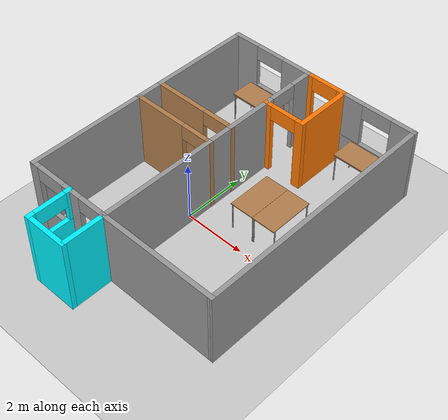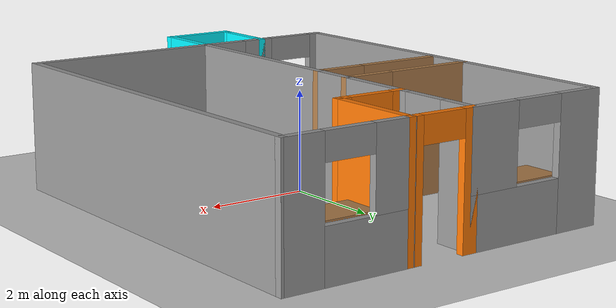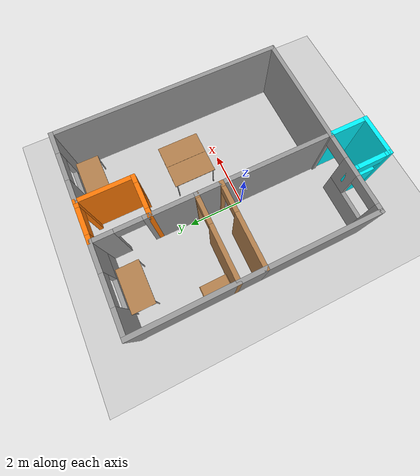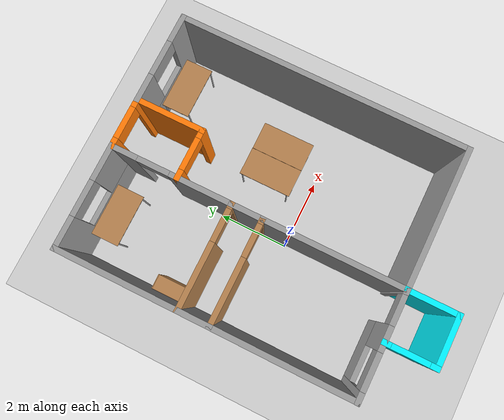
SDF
<sdf version="1.6">
 <world name="default">
  <model name="ground_plane">
   <static>1</static>
   <link name="link">
    <collision name="collision">
     <geometry><plane><normal>0 0 1</normal><size>100 100</size></plane></geometry>
     <surface><friction><ode><mu>100</mu><mu2>50</mu2></ode></friction></surface>
    </collision>
    <visual name="visual">
     <cast_shadows>0</cast_shadows>
     <geometry><plane><normal>0 0 1</normal><size>100 100</size></plane></geometry>
     <material>
      <script><uri>file://media/materials/scripts/gazebo.material</uri><name>Gazebo/Grey</name></script>
     </material>
    </visual>
   </link>
  </model>
  <model name="cozyapato">
   <pose>0.612099 0.24558 0 0 -0 0</pose>
   <link name="Wall_100">
    <collision name="Wall_100_Collision">
     <geometry><box><size>1.5 0.15 2.5</size></box></geometry>
     <pose>0 0 1.25 0 -0 0</pose>
    </collision>
    <visual name="Wall_100_Visual">
     <pose>0 0 1.25 0 -0 0</pose>
     <geometry><box><size>1.5 0.15 2.5</size></box></geometry>
     <material>
      <script><uri>file://media/materials/scripts/gazebo.material</uri><name>Gazebo/Grey</name></script>
      <ambient>0 0.952941 1 1</ambient>
     </material>
     <meta><layer>0</layer></meta>
    </visual>
    <pose>-0.499933 -4.02501 0 0 0 -1.5708</pose>
   </link>
   <link name="Wall_101">
    <collision name="Wall_101_Collision">
     <geometry><box><size>1.5 0.15 2.5</size></box></geometry>
     <pose>0 0 1.25 0 -0 0</pose>
    </collision>
    <visual name="Wall_101_Visual">
     <pose>0 0 1.25 0 -0 0</pose>
     <geometry><box><size>1.5 0.15 2.5</size></box></geometry>
     <material>
      <script><uri>file://media/materials/scripts/gazebo.material</uri><name>Gazebo/Grey</name></script>
      <ambient>0 0.952941 1 1</ambient>
     </material>
     <meta><layer>0</layer></meta>
    </visual>
    <pose>-1.17493 -4.70001 0 0 -0 3.14159</pose>
   </link>
   <link name="Wall_102">
    <pose>-1.84993 -4.02501 0 0 -0 1.5708</pose>
    <visual name="Wall_102_Visual_0">
     <pose>-0.623422 0 1.25 0 -0 0</pose>
     <geometry><box><size>0.253156 0.15 2.5</size></box></geometry>
     <material>
      <script><uri>file://media/materials/scripts/gazebo.material</uri><name>Gazebo/Grey</name></script>
      <ambient>0 0.952941 1 1</ambient>
     </material>
     <meta><layer>0</layer></meta>
    </visual>
    <collision name="Wall_102_Collision_0">
     <geometry><box><size>0.253156 0.15 2.5</size></box></geometry>
     <pose>-0.623422 0 1.25 0 -0 0</pose>
    </collision>
    <visual name="Wall_102_Visual_1">
     <pose>0.126578 0 0.75 0 -0 0</pose>
     <geometry><box><size>1.24684 0.15 1.5</size></box></geometry>
     <material>
      <script><uri>file://media/materials/scripts/gazebo.material</uri><name>Gazebo/Grey</name></script>
      <ambient>0 0.952941 1 1</ambient>
     </material>
     <meta><layer>0</layer></meta>
    </visual>
    <collision name="Wall_102_Collision_1">
     <geometry><box><size>1.24684 0.15 1.5</size></box></geometry>
     <pose>0.126578 0 0.75 0 -0 0</pose>
    </collision>
    <visual name="Wall_102_Visual_2">
     <pose>0.626578 0 2 0 -0 0</pose>
     <geometry><box><size>0.246844 0.15 1</size></box></geometry>
     <material>
      <script><uri>file://media/materials/scripts/gazebo.material</uri><name>Gazebo/Grey</name></script>
      <ambient>0 0.952941 1 1</ambient>
     </material>
     <meta><layer>0</layer></meta>
    </visual>
    <collision name="Wall_102_Collision_2">
     <geometry><box><size>0.246844 0.15 1</size></box></geometry>
     <pose>0.626578 0 2 0 -0 0</pose>
    </collision>
    <visual name="Wall_102_Visual_3">
     <pose>0.003156 0 2.25 0 -0 0</pose>
     <geometry><box><size>1 0.15 0.5</size></box></geometry>
     <material>
      <script><uri>file://media/materials/scripts/gazebo.material</uri><name>Gazebo/Grey</name></script>
      <ambient>0 0.952941 1 1</ambient>
     </material>
     <meta><layer>0</layer></meta>
    </visual>
    <collision name="Wall_102_Collision_3">
     <geometry><box><size>1 0.15 0.5</size></box></geometry>
     <pose>0.003156 0 2.25 0 -0 0</pose>
    </collision>
   </link>
   <link name="Wall_108">
    <pose>0.175067 4.7 0 0 -0 0</pose>
    <visual name="Wall_108_Visual_0">
     <pose>-0.599463 0 1.25 0 -0 0</pose>
     <geometry><box><size>0.301074 0.15 2.5</size></box></geometry>
     <material>
      <script><uri>file://media/materials/scripts/gazebo.material</uri><name>Gazebo/Grey</name></script>
      <ambient>0.996078 0.47451 0.0196078 1</ambient>
     </material>
     <meta><layer>0</layer></meta>
    </visual>
    <collision name="Wall_108_Collision_0">
     <geometry><box><size>0.301074 0.15 2.5</size></box></geometry>
     <pose>-0.599463 0 1.25 0 -0 0</pose>
    </collision>
    <visual name="Wall_108_Visual_1">
     <pose>0.600537 0 1.25 0 -0 0</pose>
     <geometry><box><size>0.298926 0.15 2.5</size></box></geometry>
     <material>
      <script><uri>file://media/materials/scripts/gazebo.material</uri><name>Gazebo/Grey</name></script>
      <ambient>0.996078 0.47451 0.0196078 1</ambient>
     </material>
     <meta><layer>0</layer></meta>
    </visual>
    <collision name="Wall_108_Collision_1">
     <geometry><box><size>0.298926 0.15 2.5</size></box></geometry>
     <pose>0.600537 0 1.25 0 -0 0</pose>
    </collision>
    <visual name="Wall_108_Visual_2">
     <pose>0.001074 0 2.25 0 -0 0</pose>
     <geometry><box><size>0.9 0.15 0.5</size></box></geometry>
     <material>
      <script><uri>file://media/materials/scripts/gazebo.material</uri><name>Gazebo/Grey</name></script>
      <ambient>0.996078 0.47451 0.0196078 1</ambient>
     </material>
     <meta><layer>0</layer></meta>
    </visual>
    <collision name="Wall_108_Collision_2">
     <geometry><box><size>0.9 0.15 0.5</size></box></geometry>
     <pose>0.001074 0 2.25 0 -0 0</pose>
    </collision>
   </link>
   <link name="Wall_109">
    <collision name="Wall_109_Collision">
     <geometry><box><size>2 0.15 2.5</size></box></geometry>
     <pose>0 0 1.25 0 -0 0</pose>
    </collision>
    <visual name="Wall_109_Visual">
     <pose>0 0 1.25 0 -0 0</pose>
     <geometry><box><size>2 0.15 2.5</size></box></geometry>
     <material>
      <script><uri>file://media/materials/scripts/gazebo.material</uri><name>Gazebo/Grey</name></script>
      <ambient>0.996078 0.47451 0.0196078 1</ambient>
     </material>
     <meta><layer>0</layer></meta>
    </visual>
    <pose>0.850067 3.77499 0 0 0 -1.5708</pose>
   </link>
   <link name="Wall_110">
    <pose>0.175067 2.84999 0 0 -0 3.14159</pose>
    <visual name="Wall_110_Visual_0">
     <pose>-0.600722 0 1.25 0 -0 0</pose>
     <geometry><box><size>0.298555 0.15 2.5</size></box></geometry>
     <material>
      <script><uri>file://media/materials/scripts/gazebo.material</uri><name>Gazebo/Grey</name></script>
      <ambient>0.996078 0.47451 0.0196078 1</ambient>
     </material>
     <meta><layer>0</layer></meta>
    </visual>
    <collision name="Wall_110_Collision_0">
     <geometry><box><size>0.298555 0.15 2.5</size></box></geometry>
     <pose>-0.600722 0 1.25 0 -0 0</pose>
    </collision>
    <visual name="Wall_110_Visual_1">
     <pose>0.599278 0 1.25 0 -0 0</pose>
     <geometry><box><size>0.301445 0.15 2.5</size></box></geometry>
     <material>
      <script><uri>file://media/materials/scripts/gazebo.material</uri><name>Gazebo/Grey</name></script>
      <ambient>0.996078 0.47451 0.0196078 1</ambient>
     </material>
     <meta><layer>0</layer></meta>
    </visual>
    <collision name="Wall_110_Collision_1">
     <geometry><box><size>0.301445 0.15 2.5</size></box></geometry>
     <pose>0.599278 0 1.25 0 -0 0</pose>
    </collision>
    <visual name="Wall_110_Visual_2">
     <pose>-0.001445 0 2.25 0 -0 0</pose>
     <geometry><box><size>0.9 0.15 0.5</size></box></geometry>
     <material>
      <script><uri>file://media/materials/scripts/gazebo.material</uri><name>Gazebo/Grey</name></script>
      <ambient>0.996078 0.47451 0.0196078 1</ambient>
     </material>
     <meta><layer>0</layer></meta>
    </visual>
    <collision name="Wall_110_Collision_2">
     <geometry><box><size>0.9 0.15 0.5</size></box></geometry>
     <pose>-0.001445 0 2.25 0 -0 0</pose>
    </collision>
   </link>
   <link name="Wall_112">
    <collision name="Wall_112_Collision">
     <geometry><box><size>3.99985 0.15 2.5</size></box></geometry>
     <pose>0 0 1.25 0 -0 0</pose>
    </collision>
    <visual name="Wall_112_Visual">
     <pose>0 0 1.25 0 -0 0</pose>
     <geometry><box><size>3.99985 0.15 2.5</size></box></geometry>
     <material>
      <script><uri>file://media/materials/scripts/gazebo.material</uri><name>Gazebo/Grey</name></script>
      <ambient>1 1 1 1</ambient>
     </material>
     <meta><layer>0</layer></meta>
    </visual>
    <pose>1.42499 -3.3502 0 0 0 -0.000101</pose>
   </link>
   <link name="Wall_113">
    <collision name="Wall_113_Collision">
     <geometry><box><size>8.2 0.15 2.5</size></box></geometry>
     <pose>0 0 1.25 0 -0 0</pose>
    </collision>
    <visual name="Wall_113_Visual">
     <pose>0 0 1.25 0 -0 0</pose>
     <geometry><box><size>8.2 0.15 2.5</size></box></geometry>
     <material>
      <script><uri>file://media/materials/scripts/gazebo.material</uri><name>Gazebo/Grey</name></script>
      <ambient>1 1 1 1</ambient>
     </material>
     <meta><layer>0</layer></meta>
    </visual>
    <pose>3.34992 0.674605 0 0 -0 1.5708</pose>
   </link>
   <link name="Wall_115">
    <pose>2.09999 4.6998 0 0 -0 3.14144</pose>
    <visual name="Wall_115_Visual_0">
     <pose>-0.912211 0 1.25 0 -0 0</pose>
     <geometry><box><size>0.825433 0.15 2.5</size></box></geometry>
     <material>
      <script><uri>file://media/materials/scripts/gazebo.material</uri><name>Gazebo/Grey</name></script>
      <ambient>1 1 1 1</ambient>
     </material>
     <meta><layer>0</layer></meta>
    </visual>
    <collision name="Wall_115_Collision_0">
     <geometry><box><size>0.825433 0.15 2.5</size></box></geometry>
     <pose>-0.912211 0 1.25 0 -0 0</pose>
    </collision>
    <visual name="Wall_115_Visual_1">
     <pose>0.412716 0 0.5 0 -0 0</pose>
     <geometry><box><size>1.82442 0.15 1</size></box></geometry>
     <material>
      <script><uri>file://media/materials/scripts/gazebo.material</uri><name>Gazebo/Grey</name></script>
      <ambient>1 1 1 1</ambient>
     </material>
     <meta><layer>0</layer></meta>
    </visual>
    <collision name="Wall_115_Collision_1">
     <geometry><box><size>1.82442 0.15 1</size></box></geometry>
     <pose>0.412716 0 0.5 0 -0 0</pose>
    </collision>
    <visual name="Wall_115_Visual_2">
     <pose>0.912716 0 1.75 0 -0 0</pose>
     <geometry><box><size>0.824421 0.15 1.5</size></box></geometry>
     <material>
      <script><uri>file://media/materials/scripts/gazebo.material</uri><name>Gazebo/Grey</name></script>
      <ambient>1 1 1 1</ambient>
     </material>
     <meta><layer>0</layer></meta>
    </visual>
    <collision name="Wall_115_Collision_2">
     <geometry><box><size>0.824421 0.15 1.5</size></box></geometry>
     <pose>0.912716 0 1.75 0 -0 0</pose>
    </collision>
    <visual name="Wall_115_Visual_3">
     <pose>0.000506 0 2.25 0 -0 0</pose>
     <geometry><box><size>1 0.15 0.5</size></box></geometry>
     <material>
      <script><uri>file://media/materials/scripts/gazebo.material</uri><name>Gazebo/Grey</name></script>
      <ambient>1 1 1 1</ambient>
     </material>
     <meta><layer>0</layer></meta>
    </visual>
    <collision name="Wall_115_Collision_3">
     <geometry><box><size>1 0.15 0.5</size></box></geometry>
     <pose>0.000506 0 2.25 0 -0 0</pose>
    </collision>
   </link>
   <link name="Wall_87">
    <pose>-1.92493 4.7 0 0 -0 0</pose>
    <visual name="Wall_87_Visual_0">
     <pose>-1.02631 0 1.25 0 -0 0</pose>
     <geometry><box><size>0.947379 0.15 2.5</size></box></geometry>
     <material>
      <script><uri>file://media/materials/scripts/gazebo.material</uri><name>Gazebo/Grey</name></script>
      <ambient>1 1 1 1</ambient>
     </material>
     <meta><layer>0</layer></meta>
    </visual>
    <collision name="Wall_87_Collision_0">
     <geometry><box><size>0.947379 0.15 2.5</size></box></geometry>
     <pose>-1.02631 0 1.25 0 -0 0</pose>
    </collision>
    <visual name="Wall_87_Visual_1">
     <pose>0.473689 0 0.5 0 -0 0</pose>
     <geometry><box><size>2.05262 0.15 1</size></box></geometry>
     <material>
      <script><uri>file://media/materials/scripts/gazebo.material</uri><name>Gazebo/Grey</name></script>
      <ambient>1 1 1 1</ambient>
     </material>
     <meta><layer>0</layer></meta>
    </visual>
    <collision name="Wall_87_Collision_1">
     <geometry><box><size>2.05262 0.15 1</size></box></geometry>
     <pose>0.473689 0 0.5 0 -0 0</pose>
    </collision>
    <visual name="Wall_87_Visual_2">
     <pose>0.973689 0 1.75 0 -0 0</pose>
     <geometry><box><size>1.05262 0.15 1.5</size></box></geometry>
     <material>
      <script><uri>file://media/materials/scripts/gazebo.material</uri><name>Gazebo/Grey</name></script>
      <ambient>1 1 1 1</ambient>
     </material>
     <meta><layer>0</layer></meta>
    </visual>
    <collision name="Wall_87_Collision_2">
     <geometry><box><size>1.05262 0.15 1.5</size></box></geometry>
     <pose>0.973689 0 1.75 0 -0 0</pose>
    </collision>
    <visual name="Wall_87_Visual_3">
     <pose>-0.052621 0 2.25 0 -0 0</pose>
     <geometry><box><size>1 0.15 0.5</size></box></geometry>
     <material>
      <script><uri>file://media/materials/scripts/gazebo.material</uri><name>Gazebo/Grey</name></script>
      <ambient>1 1 1 1</ambient>
     </material>
     <meta><layer>0</layer></meta>
    </visual>
    <collision name="Wall_87_Collision_3">
     <geometry><box><size>1 0.15 0.5</size></box></geometry>
     <pose>-0.052621 0 2.25 0 -0 0</pose>
    </collision>
   </link>
   <link name="Wall_88">
    <pose>-0.499933 3.02499 0 0 0 -1.5708</pose>
    <visual name="Wall_88_Visual_0">
     <pose>-1.35034 0 1.25 0 -0 0</pose>
     <geometry><box><size>0.799327 0.15 2.5</size></box></geometry>
     <material>
      <script><uri>file://media/materials/scripts/gazebo.material</uri><name>Gazebo/Grey</name></script>
      <ambient>1 1 1 1</ambient>
     </material>
     <meta><layer>0</layer></meta>
    </visual>
    <collision name="Wall_88_Collision_0">
     <geometry><box><size>0.799327 0.15 2.5</size></box></geometry>
     <pose>-1.35034 0 1.25 0 -0 0</pose>
    </collision>
    <visual name="Wall_88_Visual_1">
     <pose>0.849663 0 1.25 0 -0 0</pose>
     <geometry><box><size>1.80067 0.15 2.5</size></box></geometry>
     <material>
      <script><uri>file://media/materials/scripts/gazebo.material</uri><name>Gazebo/Grey</name></script>
      <ambient>1 1 1 1</ambient>
     </material>
     <meta><layer>0</layer></meta>
    </visual>
    <collision name="Wall_88_Collision_1">
     <geometry><box><size>1.80067 0.15 2.5</size></box></geometry>
     <pose>0.849663 0 1.25 0 -0 0</pose>
    </collision>
    <visual name="Wall_88_Visual_2">
     <pose>-0.500673 0 2.25 0 -0 0</pose>
     <geometry><box><size>0.9 0.15 0.5</size></box></geometry>
     <material>
      <script><uri>file://media/materials/scripts/gazebo.material</uri><name>Gazebo/Grey</name></script>
      <ambient>1 1 1 1</ambient>
     </material>
     <meta><layer>0</layer></meta>
    </visual>
    <collision name="Wall_88_Collision_2">
     <geometry><box><size>0.9 0.15 0.5</size></box></geometry>
     <pose>-0.500673 0 2.25 0 -0 0</pose>
    </collision>
   </link>
   <link name="Wall_89">
    <pose>-1.92493 1.34999 0 0 -0 3.14159</pose>
    <visual name="Wall_89_Visual_0">
     <pose>-1.4003 0 1.25 0 -0 0</pose>
     <geometry><box><size>0.199399 0.15 2.5</size></box></geometry>
     <material>
      <script><uri>file://media/materials/scripts/gazebo.material</uri><name>Gazebo/Wood</name></script>
      <ambient>1 1 1 1</ambient>
     </material>
     <meta><layer>0</layer></meta>
    </visual>
    <collision name="Wall_89_Collision_0">
     <geometry><box><size>0.199399 0.15 2.5</size></box></geometry>
     <pose>-1.4003 0 1.25 0 -0 0</pose>
    </collision>
    <visual name="Wall_89_Visual_1">
     <pose>0.549699 0 1.25 0 -0 0</pose>
     <geometry><box><size>1.9006 0.15 2.5</size></box></geometry>
     <material>
      <script><uri>file://media/materials/scripts/gazebo.material</uri><name>Gazebo/Wood</name></script>
      <ambient>1 1 1 1</ambient>
     </material>
     <meta><layer>0</layer></meta>
    </visual>
    <collision name="Wall_89_Collision_1">
     <geometry><box><size>1.9006 0.15 2.5</size></box></geometry>
     <pose>0.549699 0 1.25 0 -0 0</pose>
    </collision>
    <visual name="Wall_89_Visual_2">
     <pose>-0.850601 0 2.25 0 -0 0</pose>
     <geometry><box><size>0.9 0.15 0.5</size></box></geometry>
     <material>
      <script><uri>file://media/materials/scripts/gazebo.material</uri><name>Gazebo/Wood</name></script>
      <ambient>1 1 1 1</ambient>
     </material>
     <meta><layer>0</layer></meta>
    </visual>
    <collision name="Wall_89_Collision_2">
     <geometry><box><size>0.9 0.15 0.5</size></box></geometry>
     <pose>-0.850601 0 2.25 0 -0 0</pose>
    </collision>
   </link>
   <link name="Wall_90">
    <collision name="Wall_90_Collision">
     <geometry><box><size>3.5 0.15 2.5</size></box></geometry>
     <pose>0 0 1.25 0 -0 0</pose>
    </collision>
    <visual name="Wall_90_Visual">
     <pose>0 0 1.25 0 -0 0</pose>
     <geometry><box><size>3.5 0.15 2.5</size></box></geometry>
     <material>
      <script><uri>file://media/materials/scripts/gazebo.material</uri><name>Gazebo/Grey</name></script>
      <ambient>1 1 1 1</ambient>
     </material>
     <meta><layer>0</layer></meta>
    </visual>
    <pose>-3.34993 3.02499 0 0 -0 1.5708</pose>
   </link>
   <link name="Wall_92">
    <collision name="Wall_92_Collision">
     <geometry><box><size>1 0.15 2.5</size></box></geometry>
     <pose>0 0 1.25 0 -0 0</pose>
    </collision>
    <visual name="Wall_92_Visual">
     <pose>0 0 1.25 0 -0 0</pose>
     <geometry><box><size>1 0.15 2.5</size></box></geometry>
     <material>
      <script><uri>file://media/materials/scripts/gazebo.material</uri><name>Gazebo/Grey</name></script>
      <ambient>1 1 1 1</ambient>
     </material>
     <meta><layer>0</layer></meta>
    </visual>
    <pose>-3.34993 0.924994 0 0 0 -1.5708</pose>
   </link>
   <link name="Wall_93">
    <pose>-1.92493 0.499994 0 0 -0 0</pose>
    <visual name="Wall_93_Visual_0">
     <pose>-0.551343 0 1.25 0 -0 0</pose>
     <geometry><box><size>1.89731 0.15 2.5</size></box></geometry>
     <material>
      <script><uri>file://media/materials/scripts/gazebo.material</uri><name>Gazebo/Wood</name></script>
      <ambient>1 1 1 1</ambient>
     </material>
     <meta><layer>0</layer></meta>
    </visual>
    <collision name="Wall_93_Collision_0">
     <geometry><box><size>1.89731 0.15 2.5</size></box></geometry>
     <pose>-0.551343 0 1.25 0 -0 0</pose>
    </collision>
    <visual name="Wall_93_Visual_1">
     <pose>1.39866 0 1.25 0 -0 0</pose>
     <geometry><box><size>0.202686 0.15 2.5</size></box></geometry>
     <material>
      <script><uri>file://media/materials/scripts/gazebo.material</uri><name>Gazebo/Wood</name></script>
      <ambient>1 1 1 1</ambient>
     </material>
     <meta><layer>0</layer></meta>
    </visual>
    <collision name="Wall_93_Collision_1">
     <geometry><box><size>0.202686 0.15 2.5</size></box></geometry>
     <pose>1.39866 0 1.25 0 -0 0</pose>
    </collision>
    <visual name="Wall_93_Visual_2">
     <pose>0.847314 0 2.25 0 -0 0</pose>
     <geometry><box><size>0.9 0.15 0.5</size></box></geometry>
     <material>
      <script><uri>file://media/materials/scripts/gazebo.material</uri><name>Gazebo/Wood</name></script>
      <ambient>1 1 1 1</ambient>
     </material>
     <meta><layer>0</layer></meta>
    </visual>
    <collision name="Wall_93_Collision_2">
     <geometry><box><size>0.9 0.15 0.5</size></box></geometry>
     <pose>0.847314 0 2.25 0 -0 0</pose>
    </collision>
   </link>
   <link name="Wall_94">
    <collision name="Wall_94_Collision">
     <geometry><box><size>1 0.15 2.5</size></box></geometry>
     <pose>0 0 1.25 0 -0 0</pose>
    </collision>
    <visual name="Wall_94_Visual">
     <pose>0 0 1.25 0 -0 0</pose>
     <geometry><box><size>1 0.15 2.5</size></box></geometry>
     <material>
      <script><uri>file://media/materials/scripts/gazebo.material</uri><name>Gazebo/Grey</name></script>
      <ambient>1 1 1 1</ambient>
     </material>
     <meta><layer>0</layer></meta>
    </visual>
    <pose>-0.499933 0.924994 0 0 -0 1.5708</pose>
   </link>
   <link name="Wall_96">
    <collision name="Wall_96_Collision">
     <geometry><box><size>4 0.15 2.5</size></box></geometry>
     <pose>0 0 1.25 0 -0 0</pose>
    </collision>
    <visual name="Wall_96_Visual">
     <pose>0 0 1.25 0 -0 0</pose>
     <geometry><box><size>4 0.15 2.5</size></box></geometry>
     <material>
      <script><uri>file://media/materials/scripts/gazebo.material</uri><name>Gazebo/Grey</name></script>
      <ambient>1 1 1 1</ambient>
     </material>
     <meta><layer>0</layer></meta>
    </visual>
    <pose>-3.34993 -1.42501 0 0 0 -1.5708</pose>
   </link>
   <link name="Wall_97">
    <pose>-1.92493 -3.35001 0 0 -0 0</pose>
    <visual name="Wall_97_Visual_0">
     <pose>-1.33807 0 1.25 0 -0 0</pose>
     <geometry><box><size>0.323858 0.15 2.5</size></box></geometry>
     <material>
      <script><uri>file://media/materials/scripts/gazebo.material</uri><name>Gazebo/Grey</name></script>
      <ambient>1 1 1 1</ambient>
     </material>
     <meta><layer>0</layer></meta>
    </visual>
    <collision name="Wall_97_Collision_0">
     <geometry><box><size>0.323858 0.15 2.5</size></box></geometry>
     <pose>-1.33807 0 1.25 0 -0 0</pose>
    </collision>
    <visual name="Wall_97_Visual_1">
     <pose>1.40031 0 1.25 0 -0 0</pose>
     <geometry><box><size>0.199375 0.15 2.5</size></box></geometry>
     <material>
      <script><uri>file://media/materials/scripts/gazebo.material</uri><name>Gazebo/Grey</name></script>
      <ambient>1 1 1 1</ambient>
     </material>
     <meta><layer>0</layer></meta>
    </visual>
    <collision name="Wall_97_Collision_1">
     <geometry><box><size>0.199375 0.15 2.5</size></box></geometry>
     <pose>1.40031 0 1.25 0 -0 0</pose>
    </collision>
    <visual name="Wall_97_Visual_2">
     <pose>-0.337758 0 0.5 0 -0 0</pose>
     <geometry><box><size>1.67677 0.15 1</size></box></geometry>
     <material>
      <script><uri>file://media/materials/scripts/gazebo.material</uri><name>Gazebo/Grey</name></script>
      <ambient>1 1 1 1</ambient>
     </material>
     <meta><layer>0</layer></meta>
    </visual>
    <collision name="Wall_97_Collision_2">
     <geometry><box><size>1.67677 0.15 1</size></box></geometry>
     <pose>-0.337758 0 0.5 0 -0 0</pose>
    </collision>
    <visual name="Wall_97_Visual_3">
     <pose>0.162242 0 1.75 0 -0 0</pose>
     <geometry><box><size>0.676767 0.15 1.5</size></box></geometry>
     <material>
      <script><uri>file://media/materials/scripts/gazebo.material</uri><name>Gazebo/Grey</name></script>
      <ambient>1 1 1 1</ambient>
     </material>
     <meta><layer>0</layer></meta>
    </visual>
    <collision name="Wall_97_Collision_3">
     <geometry><box><size>0.676767 0.15 1.5</size></box></geometry>
     <pose>0.162242 0 1.75 0 -0 0</pose>
    </collision>
    <visual name="Wall_97_Visual_4">
     <pose>-0.676142 0 2.25 0 -0 0</pose>
     <geometry><box><size>1 0.15 0.5</size></box></geometry>
     <material>
      <script><uri>file://media/materials/scripts/gazebo.material</uri><name>Gazebo/Grey</name></script>
      <ambient>1 1 1 1</ambient>
     </material>
     <meta><layer>0</layer></meta>
    </visual>
    <collision name="Wall_97_Collision_4">
     <geometry><box><size>1 0.15 0.5</size></box></geometry>
     <pose>-0.676142 0 2.25 0 -0 0</pose>
    </collision>
    <visual name="Wall_97_Visual_5">
     <pose>0.900625 0 2.25 0 -0 0</pose>
     <geometry><box><size>0.8 0.15 0.5</size></box></geometry>
     <material>
      <script><uri>file://media/materials/scripts/gazebo.material</uri><name>Gazebo/Grey</name></script>
      <ambient>1 1 1 1</ambient>
     </material>
     <meta><layer>0</layer></meta>
    </visual>
    <collision name="Wall_97_Collision_5">
     <geometry><box><size>0.8 0.15 0.5</size></box></geometry>
     <pose>0.900625 0 2.25 0 -0 0</pose>
    </collision>
   </link>
   <link name="Wall_98">
    <collision name="Wall_98_Collision">
     <geometry><box><size>4 0.15 2.5</size></box></geometry>
     <pose>0 0 1.25 0 -0 0</pose>
    </collision>
    <visual name="Wall_98_Visual">
     <pose>0 0 1.25 0 -0 0</pose>
     <geometry><box><size>4 0.15 2.5</size></box></geometry>
     <material>
      <script><uri>file://media/materials/scripts/gazebo.material</uri><name>Gazebo/Grey</name></script>
      <ambient>1 1 1 1</ambient>
     </material>
     <meta><layer>0</layer></meta>
    </visual>
    <pose>-0.499933 -1.42501 0 0 -0 1.5708</pose>
   </link>
   <static>1</static>
  </model>
  <model name="table">
   <static>1</static>
   <link name="link">
    <collision name="surface">
     <pose>0 0 1 0 -0 0</pose>
     <geometry><box><size>1.5 0.8 0.03</size></box></geometry>
     <surface><friction><ode><mu>0.6</mu><mu2>0.6</mu2></ode></friction></surface>
    </collision>
    <visual name="visual1">
     <pose>0 0 1 0 -0 0</pose>
     <geometry><box><size>1.5 0.8 0.03</size></box></geometry>
     <material>
      <script><uri>file://media/materials/scripts/gazebo.material</uri><name>Gazebo/Wood</name></script>
     </material>
    </visual>
    <collision name="front_left_leg">
     <pose>0.68 0.38 0.5 0 -0 0</pose>
     <geometry><cylinder><radius>0.02</radius><length>1</length></cylinder></geometry>
    </collision>
    <visual name="front_left_leg">
     <pose>0.68 0.38 0.5 0 -0 0</pose>
     <geometry><cylinder><radius>0.02</radius><length>1</length></cylinder></geometry>
     <material>
      <script><uri>file://media/materials/scripts/gazebo.material</uri><name>Gazebo/Grey</name></script>
     </material>
    </visual>
    <collision name="front_right_leg">
     <pose>0.68 -0.38 0.5 0 -0 0</pose>
     <geometry><cylinder><radius>0.02</radius><length>1</length></cylinder></geometry>
    </collision>
    <visual name="front_right_leg">
     <pose>0.68 -0.38 0.5 0 -0 0</pose>
     <geometry><cylinder><radius>0.02</radius><length>1</length></cylinder></geometry>
     <material>
      <script><uri>file://media/materials/scripts/gazebo.material</uri><name>Gazebo/Grey</name></script>
     </material>
    </visual>
    <collision name="back_right_leg">
     <pose>-0.68 -0.38 0.5 0 -0 0</pose>
     <geometry><cylinder><radius>0.02</radius><length>1</length></cylinder></geometry>
    </collision>
    <visual name="back_right_leg">
     <pose>-0.68 -0.38 0.5 0 -0 0</pose>
     <geometry><cylinder><radius>0.02</radius><length>1</length></cylinder></geometry>
     <material>
      <script><uri>file://media/materials/scripts/gazebo.material</uri><name>Gazebo/Grey</name></script>
     </material>
    </visual>
    <collision name="back_left_leg">
     <pose>-0.68 0.38 0.5 0 -0 0</pose>
     <geometry><cylinder><radius>0.02</radius><length>1</length></cylinder></geometry>
    </collision>
    <visual name="back_left_leg">
     <pose>-0.68 0.38 0.5 0 -0 0</pose>
     <geometry><cylinder><radius>0.02</radius><length>1</length></cylinder></geometry>
     <material>
      <script><uri>file://media/materials/scripts/gazebo.material</uri><name>Gazebo/Grey</name></script>
     </material>
    </visual>
   </link>
   <pose>-1.33374 4.42794 0 0 -0 0</pose>
  </model>
  <model name="bookshelf">
   <static>1</static>
   <link name="link">
    <inertial><mass>1</mass></inertial>
    <collision name="back">
     <pose>0 0.005 0.6 0 -0 0</pose>
     <geometry><box><size>0.9 0.01 1.2</size></box></geometry>
    </collision>
    <visual name="visual1">
     <pose>0 0.005 0.6 0 -0 0</pose>
     <geometry><box><size>0.9 0.01 1.2</size></box></geometry>
     <material>
      <script><uri>file://media/materials/scripts/gazebo.material</uri><name>Gazebo/Wood</name></script>
     </material>
    </visual>
    <collision name="left_side">
     <pose>0.45 -0.195 0.6 0 -0 0</pose>
     <geometry><box><size>0.02 0.4 1.2</size></box></geometry>
    </collision>
    <visual name="visual2">
     <pose>0.45 -0.195 0.6 0 -0 0</pose>
     <geometry><box><size>0.02 0.4 1.2</size></box></geometry>
     <material>
      <script><uri>file://media/materials/scripts/gazebo.material</uri><name>Gazebo/Wood</name></script>
     </material>
    </visual>
    <collision name="right_side">
     <pose>-0.45 -0.195 0.6 0 -0 0</pose>
     <geometry><box><size>0.02 0.4 1.2</size></box></geometry>
    </collision>
    <visual name="visual3">
     <pose>-0.45 -0.195 0.6 0 -0 0</pose>
     <geometry><box><size>0.02 0.4 1.2</size></box></geometry>
     <material>
      <script><uri>file://media/materials/scripts/gazebo.material</uri><name>Gazebo/Wood</name></script>
     </material>
    </visual>
    <collision name="bottom">
     <pose>0 -0.195 0.03 0 -0 0</pose>
     <geometry><box><size>0.88 0.4 0.06</size></box></geometry>
    </collision>
    <visual name="visual4">
     <pose>0 -0.195 0.03 0 -0 0</pose>
     <geometry><box><size>0.88 0.4 0.06</size></box></geometry>
     <material>
      <script><uri>file://media/materials/scripts/gazebo.material</uri><name>Gazebo/Wood</name></script>
     </material>
    </visual>
    <collision name="top">
     <pose>0 -0.195 1.19 0 -0 0</pose>
     <geometry><box><size>0.88 0.4 0.02</size></box></geometry>
    </collision>
    <visual name="visual5">
     <pose>0 -0.195 1.19 0 -0 0</pose>
     <geometry><box><size>0.88 0.4 0.02</size></box></geometry>
     <material>
      <script><uri>file://media/materials/scripts/gazebo.material</uri><name>Gazebo/Wood</name></script>
     </material>
    </visual>
    <collision name="low_shelf">
     <pose>0 -0.195 0.43 0 -0 0</pose>
     <geometry><box><size>0.88 0.4 0.02</size></box></geometry>
    </collision>
    <visual name="visual6">
     <pose>0 -0.195 0.43 0 -0 0</pose>
     <geometry><box><size>0.88 0.4 0.02</size></box></geometry>
     <material>
      <script><uri>file://media/materials/scripts/gazebo.material</uri><name>Gazebo/Wood</name></script>
     </material>
    </visual>
    <collision name="high_shelf">
     <pose>0 -0.195 0.8 0 -0 0</pose>
     <geometry><box><size>0.88 0.4 0.02</size></box></geometry>
    </collision>
    <visual name="visual7">
     <pose>0 -0.195 0.8 0 -0 0</pose>
     <geometry><box><size>0.88 0.4 0.02</size></box></geometry>
     <material>
      <script><uri>file://media/materials/scripts/gazebo.material</uri><name>Gazebo/Wood</name></script>
     </material>
    </visual>
   </link>
   <pose>-2.63529 2.18184 0 0 -0 1.57403</pose>
  </model>
  <model name="table_clone_0">
   <static>1</static>
   <link name="link">
    <collision name="surface">
     <pose>0 0 1 0 -0 0</pose>
     <geometry><box><size>1.5 0.8 0.03</size></box></geometry>
     <surface><friction><ode><mu>0.6</mu><mu2>0.6</mu2></ode></friction></surface>
    </collision>
    <visual name="visual1">
     <pose>0 0 1 0 -0 0</pose>
     <geometry><box><size>1.5 0.8 0.03</size></box></geometry>
     <material>
      <script><uri>file://media/materials/scripts/gazebo.material</uri><name>Gazebo/Wood</name></script>
     </material>
    </visual>
    <collision name="front_left_leg">
     <pose>0.68 0.38 0.5 0 -0 0</pose>
     <geometry><cylinder><radius>0.02</radius><length>1</length></cylinder></geometry>
    </collision>
    <visual name="front_left_leg">
     <pose>0.68 0.38 0.5 0 -0 0</pose>
     <geometry><cylinder><radius>0.02</radius><length>1</length></cylinder></geometry>
     <material>
      <script><uri>file://media/materials/scripts/gazebo.material</uri><name>Gazebo/Grey</name></script>
     </material>
    </visual>
    <collision name="front_right_leg">
     <pose>0.68 -0.38 0.5 0 -0 0</pose>
     <geometry><cylinder><radius>0.02</radius><length>1</length></cylinder></geometry>
    </collision>
    <visual name="front_right_leg">
     <pose>0.68 -0.38 0.5 0 -0 0</pose>
     <geometry><cylinder><radius>0.02</radius><length>1</length></cylinder></geometry>
     <material>
      <script><uri>file://media/materials/scripts/gazebo.material</uri><name>Gazebo/Grey</name></script>
     </material>
    </visual>
    <collision name="back_right_leg">
     <pose>-0.68 -0.38 0.5 0 -0 0</pose>
     <geometry><cylinder><radius>0.02</radius><length>1</length></cylinder></geometry>
    </collision>
    <visual name="back_right_leg">
     <pose>-0.68 -0.38 0.5 0 -0 0</pose>
     <geometry><cylinder><radius>0.02</radius><length>1</length></cylinder></geometry>
     <material>
      <script><uri>file://media/materials/scripts/gazebo.material</uri><name>Gazebo/Grey</name></script>
     </material>
    </visual>
    <collision name="back_left_leg">
     <pose>-0.68 0.38 0.5 0 -0 0</pose>
     <geometry><cylinder><radius>0.02</radius><length>1</length></cylinder></geometry>
    </collision>
    <visual name="back_left_leg">
     <pose>-0.68 0.38 0.5 0 -0 0</pose>
     <geometry><cylinder><radius>0.02</radius><length>1</length></cylinder></geometry>
     <material>
      <script><uri>file://media/materials/scripts/gazebo.material</uri><name>Gazebo/Grey</name></script>
     </material>
    </visual>
   </link>
   <pose>2.7332 4.41755 0 0 -0 0</pose>
  </model>
  <model name="table_clone_clone">
   <static>1</static>
   <link name="link">
    <collision name="surface">
     <pose>0 0 1 0 -0 0</pose>
     <geometry><box><size>1.5 0.8 0.03</size></box></geometry>
     <surface><friction><ode><mu>0.6</mu><mu2>0.6</mu2></ode></friction></surface>
    </collision>
    <visual name="visual1">
     <pose>0 0 1 0 -0 0</pose>
     <geometry><box><size>1.5 0.8 0.03</size></box></geometry>
     <material>
      <script><uri>file://media/materials/scripts/gazebo.material</uri><name>Gazebo/Wood</name></script>
     </material>
    </visual>
    <collision name="front_left_leg">
     <pose>0.68 0.38 0.5 0 -0 0</pose>
     <geometry><cylinder><radius>0.02</radius><length>1</length></cylinder></geometry>
    </collision>
    <visual name="front_left_leg">
     <pose>0.68 0.38 0.5 0 -0 0</pose>
     <geometry><cylinder><radius>0.02</radius><length>1</length></cylinder></geometry>
     <material>
      <script><uri>file://media/materials/scripts/gazebo.material</uri><name>Gazebo/Grey</name></script>
     </material>
    </visual>
    <collision name="front_right_leg">
     <pose>0.68 -0.38 0.5 0 -0 0</pose>
     <geometry><cylinder><radius>0.02</radius><length>1</length></cylinder></geometry>
    </collision>
    <visual name="front_right_leg">
     <pose>0.68 -0.38 0.5 0 -0 0</pose>
     <geometry><cylinder><radius>0.02</radius><length>1</length></cylinder></geometry>
     <material>
      <script><uri>file://media/materials/scripts/gazebo.material</uri><name>Gazebo/Grey</name></script>
     </material>
    </visual>
    <collision name="back_right_leg">
     <pose>-0.68 -0.38 0.5 0 -0 0</pose>
     <geometry><cylinder><radius>0.02</radius><length>1</length></cylinder></geometry>
    </collision>
    <visual name="back_right_leg">
     <pose>-0.68 -0.38 0.5 0 -0 0</pose>
     <geometry><cylinder><radius>0.02</radius><length>1</length></cylinder></geometry>
     <material>
      <script><uri>file://media/materials/scripts/gazebo.material</uri><name>Gazebo/Grey</name></script>
     </material>
    </visual>
    <collision name="back_left_leg">
     <pose>-0.68 0.38 0.5 0 -0 0</pose>
     <geometry><cylinder><radius>0.02</radius><length>1</length></cylinder></geometry>
    </collision>
    <visual name="back_left_leg">
     <pose>-0.68 0.38 0.5 0 -0 0</pose>
     <geometry><cylinder><radius>0.02</radius><length>1</length></cylinder></geometry>
     <material>
      <script><uri>file://media/materials/scripts/gazebo.material</uri><name>Gazebo/Grey</name></script>
     </material>
    </visual>
   </link>
   <pose>1.57816 1.23096 0 0 -0 1.57287</pose>
  </model>
  <model name="table_clone_clone_0">
   <static>1</static>
   <link name="link">
    <collision name="surface">
     <pose>0 0 1 0 -0 0</pose>
     <geometry><box><size>1.5 0.8 0.03</size></box></geometry>
     <surface><friction><ode><mu>0.6</mu><mu2>0.6</mu2></ode></friction></surface>
    </collision>
    <visual name="visual1">
     <pose>0 0 1 0 -0 0</pose>
     <geometry><box><size>1.5 0.8 0.03</size></box></geometry>
     <material>
      <script><uri>file://media/materials/scripts/gazebo.material</uri><name>Gazebo/Wood</name></script>
     </material>
    </visual>
    <collision name="front_left_leg">
     <pose>0.68 0.38 0.5 0 -0 0</pose>
     <geometry><cylinder><radius>0.02</radius><length>1</length></cylinder></geometry>
    </collision>
    <visual name="front_left_leg">
     <pose>0.68 0.38 0.5 0 -0 0</pose>
     <geometry><cylinder><radius>0.02</radius><length>1</length></cylinder></geometry>
     <material>
      <script><uri>file://media/materials/scripts/gazebo.material</uri><name>Gazebo/Grey</name></script>
     </material>
    </visual>
    <collision name="front_right_leg">
     <pose>0.68 -0.38 0.5 0 -0 0</pose>
     <geometry><cylinder><radius>0.02</radius><length>1</length></cylinder></geometry>
    </collision>
    <visual name="front_right_leg">
     <pose>0.68 -0.38 0.5 0 -0 0</pose>
     <geometry><cylinder><radius>0.02</radius><length>1</length></cylinder></geometry>
     <material>
      <script><uri>file://media/materials/scripts/gazebo.material</uri><name>Gazebo/Grey</name></script>
     </material>
    </visual>
    <collision name="back_right_leg">
     <pose>-0.68 -0.38 0.5 0 -0 0</pose>
     <geometry><cylinder><radius>0.02</radius><length>1</length></cylinder></geometry>
    </collision>
    <visual name="back_right_leg">
     <pose>-0.68 -0.38 0.5 0 -0 0</pose>
     <geometry><cylinder><radius>0.02</radius><length>1</length></cylinder></geometry>
     <material>
      <script><uri>file://media/materials/scripts/gazebo.material</uri><name>Gazebo/Grey</name></script>
     </material>
    </visual>
    <collision name="back_left_leg">
     <pose>-0.68 0.38 0.5 0 -0 0</pose>
     <geometry><cylinder><radius>0.02</radius><length>1</length></cylinder></geometry>
    </collision>
    <visual name="back_left_leg">
     <pose>-0.68 0.38 0.5 0 -0 0</pose>
     <geometry><cylinder><radius>0.02</radius><length>1</length></cylinder></geometry>
     <material>
      <script><uri>file://media/materials/scripts/gazebo.material</uri><name>Gazebo/Grey</name></script>
     </material>
    </visual>
   </link>
   <pose>2.38127 1.23096 0 0 -0 1.57287</pose>
  </model>
 </world>
</sdf>
